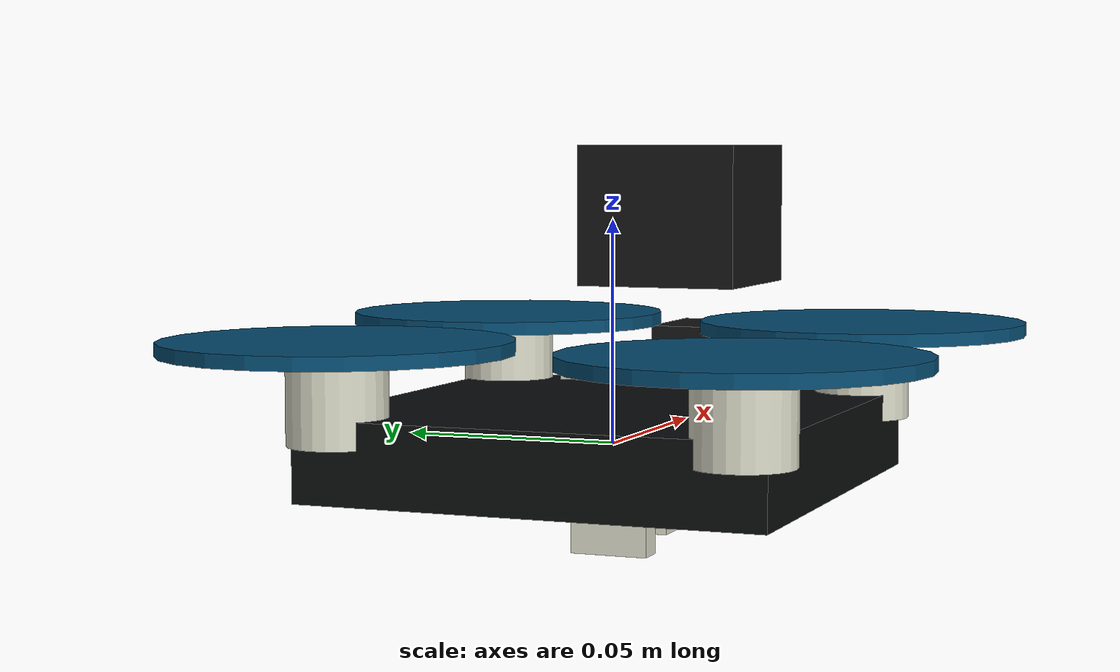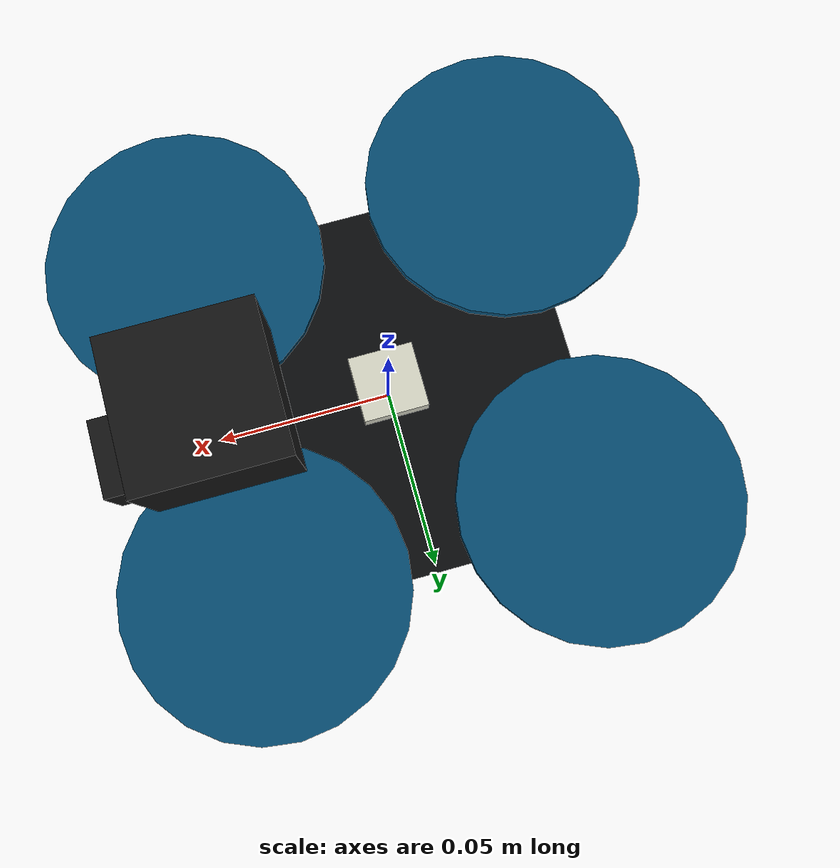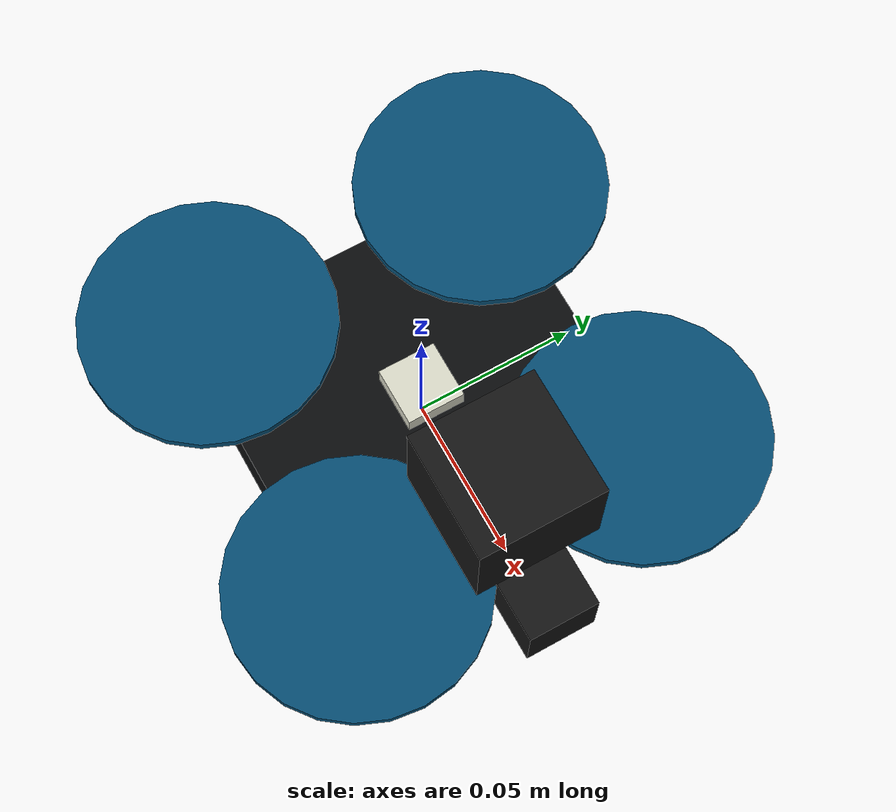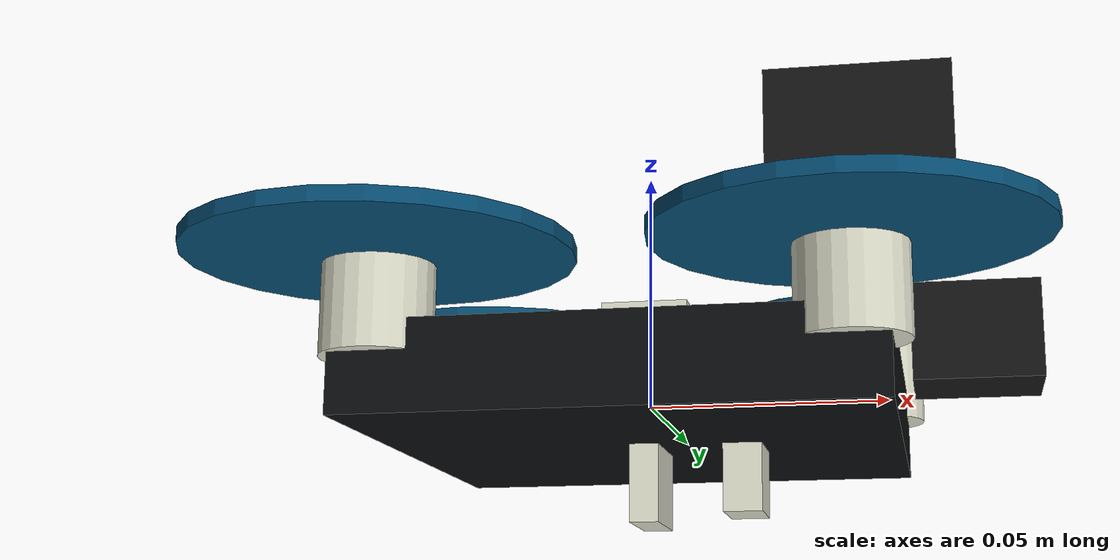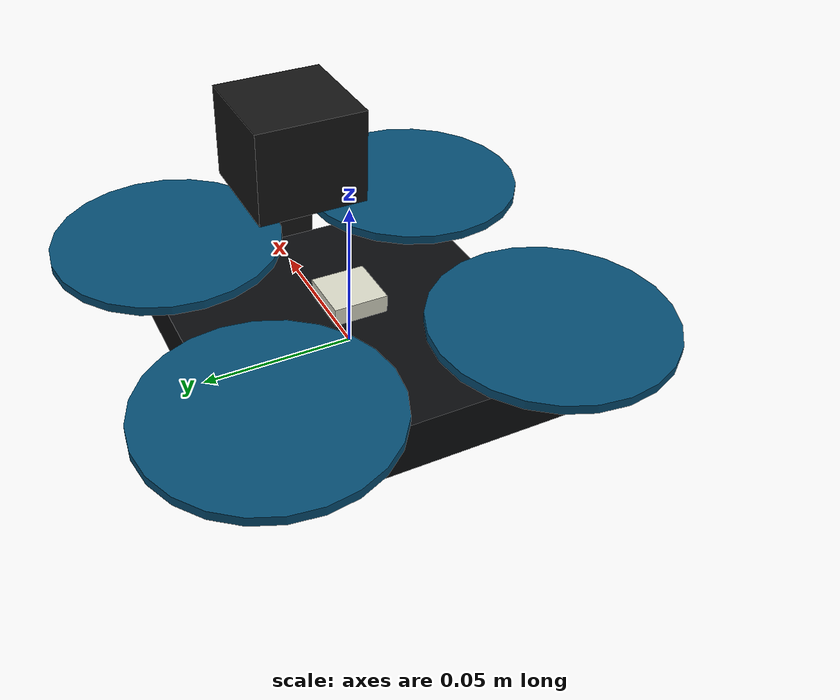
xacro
<?xml version="1.0"?>
<robot xmlns:xacro="http://www.ros.org/wiki/xacro" name="openipc_cinewhoop">
  <xacro:property name="arm" value="0.04525"/>
  <xacro:property name="prop_r" value="0.0381"/>

  <material name="carbon"><color rgba="0.04 0.045 0.05 1.0"/></material>
  <material name="duct"><color rgba="0.02 0.30 0.45 1.0"/></material>
  <material name="sensor"><color rgba="0.85 0.85 0.78 1.0"/></material>
  <material name="camera"><color rgba="0.08 0.08 0.08 1.0"/></material>

  <link name="base_link">
    <visual>
      <origin xyz="0 0 0" rpy="0 0 0"/>
      <geometry><box size="0.105 0.105 0.018"/></geometry>
      <material name="carbon"/>
    </visual>
    <collision>
      <geometry><box size="0.105 0.105 0.018"/></geometry>
    </collision>
    <inertial>
      <mass value="0.306"/>
      <inertia ixx="0.00047" ixy="0" ixz="0" iyy="0.00047" iyz="0" izz="0.00048"/>
    </inertial>
  </link>

  <xacro:macro name="fixed_box_link" params="name xyz size material rpy:='0 0 0'">
    <link name="${name}">
      <visual>
        <origin xyz="0 0 0" rpy="0 0 0"/>
        <geometry><box size="${size}"/></geometry>
        <material name="${material}"/>
      </visual>
    </link>
    <joint name="${name}_joint" type="fixed">
      <parent link="base_link"/>
      <child link="${name}"/>
      <origin xyz="${xyz}" rpy="${rpy}"/>
    </joint>
  </xacro:macro>

  <xacro:macro name="motor" params="name x y">
    <link name="${name}">
      <visual>
        <origin xyz="0 0 0" rpy="0 0 0"/>
        <geometry><cylinder radius="0.011" length="0.018"/></geometry>
        <material name="sensor"/>
      </visual>
      <visual>
        <origin xyz="0 0 0.012" rpy="0 0 0"/>
        <geometry><cylinder radius="${prop_r}" length="0.003"/></geometry>
        <material name="duct"/>
      </visual>
    </link>
    <joint name="${name}_joint" type="fixed">
      <parent link="base_link"/>
      <child link="${name}"/>
      <origin xyz="${x} ${y} 0.012" rpy="0 0 0"/>
    </joint>
  </xacro:macro>

  <xacro:fixed_box_link name="camera_link" xyz="0.068 0 0.012" size="0.026 0.022 0.020" material="camera"/>
  <link name="camera_optical_frame"/>
  <joint name="camera_optical_frame_joint" type="fixed">
    <parent link="camera_link"/>
    <child link="camera_optical_frame"/>
    <origin xyz="0.014 0 0" rpy="-1.57079632679 0 -1.57079632679"/>
  </joint>

  <xacro:fixed_box_link name="imu_link" xyz="0 0 0.018" size="0.018 0.018 0.006" material="sensor"/>
  <xacro:fixed_box_link name="optical_flow_link" xyz="0 0 -0.016" rpy="0 ${pi/2} 0" size="0.018 0.018 0.006" material="sensor"/>
  <xacro:fixed_box_link name="rangefinder_link" xyz="0.020 0 -0.016" rpy="0 ${pi/2} 0" size="0.014 0.014 0.008" material="sensor"/>
  <!-- On a mast above the propeller plane; see the SDF for why, and cad_claude/
       for the geometry that forces it. -->
  <xacro:fixed_box_link name="front_lidar_link" xyz="0.046 0 0.050" size="0.0386 0.0386 0.0333" material="camera"/>

  <xacro:motor name="motor_1" x="${arm}" y="-${arm}"/>
  <xacro:motor name="motor_2" x="-${arm}" y="${arm}"/>
  <xacro:motor name="motor_3" x="${arm}" y="${arm}"/>
  <xacro:motor name="motor_4" x="-${arm}" y="-${arm}"/>
</robot>
